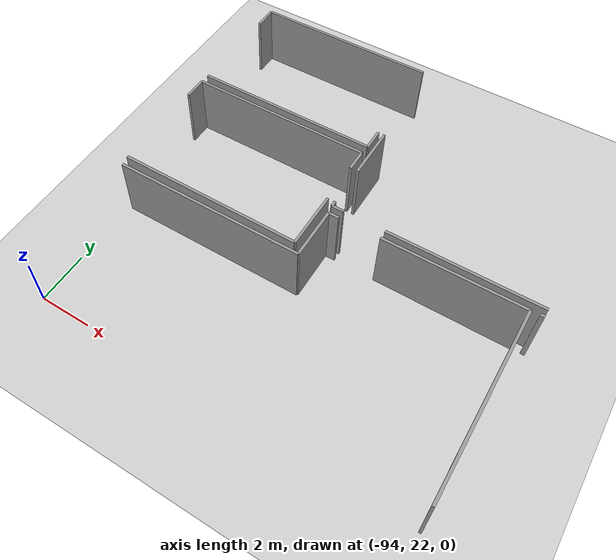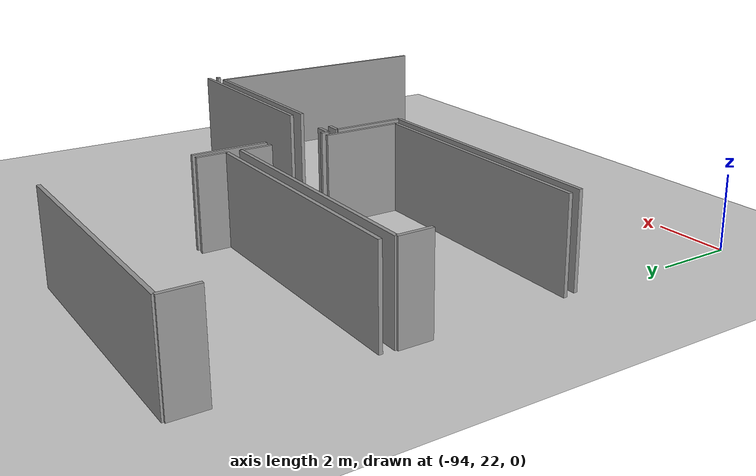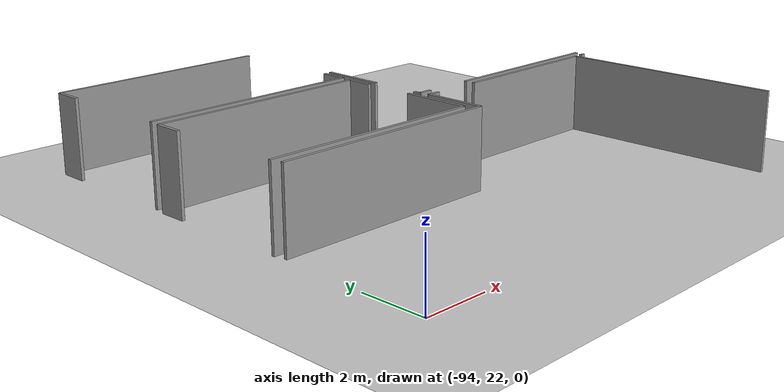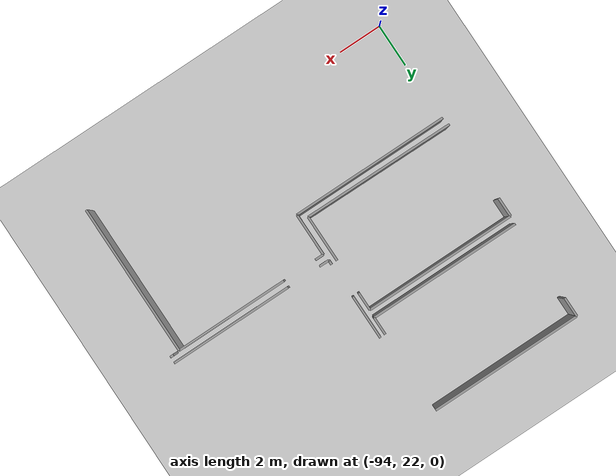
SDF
<sdf version="1.6">
 <world name="default">
  <model name="ground_plane">
   <static>1</static>
   <link name="link">
    <collision name="collision">
     <geometry><plane><normal>0 0 1</normal><size>100 100</size></plane></geometry>
     <surface><friction><ode><mu>100</mu><mu2>50</mu2></ode></friction></surface>
    </collision>
    <visual name="visual">
     <cast_shadows>0</cast_shadows>
     <geometry><plane><normal>0 0 1</normal><size>100 100</size></plane></geometry>
     <material>
      <script><uri>file://media/materials/scripts/gazebo.material</uri><name>Gazebo/Grey</name></script>
     </material>
    </visual>
   </link>
  </model>
  <model name="0510035740_A_40_1_103">
   <static>1</static>
   <link name="Wall_29">
    <collision name="Wall_29_Collision">
     <geometry><box><size>0.901759484274 0.1 2.5</size></box></geometry>
     <pose>0.450879742137 0 1.25 0 0 0</pose>
    </collision>
    <visual name="Wall_29_Visual">
     <pose>0.450879742137 0 1.25 0 0 0</pose>
     <geometry><box><size>0.901759484274 0.1 2.5</size></box></geometry>
     <material>
      <script><uri>file://media/materials/scripts/gazebo.material</uri><name>Gazebo/Grey</name></script>
      <ambient>1 1 1 1</ambient>
     </material>
    </visual>
    <pose>0.0164971478969 -13.840599481 0 0 0 1.57079632679</pose>
   </link>
   <link name="Wall_30">
    <collision name="Wall_30_Collision">
     <geometry><box><size>7.01915572673 0.1 2.5</size></box></geometry>
     <pose>3.50957786337 0 1.25 0 0 0</pose>
    </collision>
    <visual name="Wall_30_Visual">
     <pose>3.50957786337 0 1.25 0 0 0</pose>
     <geometry><box><size>7.01915572673 0.1 2.5</size></box></geometry>
     <material>
      <script><uri>file://media/materials/scripts/gazebo.material</uri><name>Gazebo/Grey</name></script>
      <ambient>1 1 1 1</ambient>
     </material>
    </visual>
    <pose>0.0164971478969 -12.9388399967 0 0 0 0.0</pose>
   </link>
   <link name="Wall_31">
    <collision name="Wall_31_Collision">
     <geometry><box><size>0.823080778919 0.1 2.5</size></box></geometry>
     <pose>0.41154038946 0 1.25 0 0 0</pose>
    </collision>
    <visual name="Wall_31_Visual">
     <pose>0.41154038946 0 1.25 0 0 0</pose>
     <geometry><box><size>0.823080778919 0.1 2.5</size></box></geometry>
     <material>
      <script><uri>file://media/materials/scripts/gazebo.material</uri><name>Gazebo/Grey</name></script>
      <ambient>1 1 1 1</ambient>
     </material>
    </visual>
    <pose>7.03565287463 -16.7047581582 0 0 0 -1.57079632679</pose>
   </link>
   <link name="Wall_32">
    <collision name="Wall_32_Collision">
     <geometry><box><size>7.0191573832 0.1 2.5</size></box></geometry>
     <pose>3.5095786916 0 1.25 0 0 0</pose>
    </collision>
    <visual name="Wall_32_Visual">
     <pose>3.5095786916 0 1.25 0 0 0</pose>
     <geometry><box><size>7.0191573832 0.1 2.5</size></box></geometry>
     <material>
      <script><uri>file://media/materials/scripts/gazebo.material</uri><name>Gazebo/Grey</name></script>
      <ambient>1 1 1 1</ambient>
     </material>
    </visual>
    <pose>7.03565287463 -17.5278389371 0 0 0 3.14090564184</pose>
   </link>
   <link name="Wall_33">
    <collision name="Wall_33_Collision">
     <geometry><box><size>0.887546556855 0.1 2.5</size></box></geometry>
     <pose>0.443773278427 0 1.25 0 0 0</pose>
    </collision>
    <visual name="Wall_33_Visual">
     <pose>0.443773278427 0 1.25 0 0 0</pose>
     <geometry><box><size>0.887546556855 0.1 2.5</size></box></geometry>
     <material>
      <script><uri>file://media/materials/scripts/gazebo.material</uri><name>Gazebo/Grey</name></script>
      <ambient>1 1 1 1</ambient>
     </material>
    </visual>
    <pose>0.0 -18.7839063977 0 0 0 1.57079632679</pose>
   </link>
   <link name="Wall_34">
    <collision name="Wall_34_Collision">
     <geometry><box><size>7.00240477656 0.1 2.5</size></box></geometry>
     <pose>3.50120238828 0 1.25 0 0 0</pose>
    </collision>
    <visual name="Wall_34_Visual">
     <pose>3.50120238828 0 1.25 0 0 0</pose>
     <geometry><box><size>7.00240477656 0.1 2.5</size></box></geometry>
     <material>
      <script><uri>file://media/materials/scripts/gazebo.material</uri><name>Gazebo/Grey</name></script>
      <ambient>1 1 1 1</ambient>
     </material>
    </visual>
    <pose>0.0 -17.8963598409 0 0 0 0.0</pose>
   </link>
   <link name="Wall_35">
    <collision name="Wall_35_Collision">
     <geometry><box><size>0.837801310889 0.1 2.5</size></box></geometry>
     <pose>0.418900655444 0 1.25 0 0 0</pose>
    </collision>
    <visual name="Wall_35_Visual">
     <pose>0.418900655444 0 1.25 0 0 0</pose>
     <geometry><box><size>0.837801310889 0.1 2.5</size></box></geometry>
     <material>
      <script><uri>file://media/materials/scripts/gazebo.material</uri><name>Gazebo/Grey</name></script>
      <ambient>1 1 1 1</ambient>
     </material>
    </visual>
    <pose>7.00240477656 -17.8963598409 0 0 0 -1.57079632679</pose>
   </link>
   <link name="Wall_36">
    <collision name="Wall_36_Collision">
     <geometry><box><size>2.16138017677 0.1 2.5</size></box></geometry>
     <pose>1.08069008839 0 1.25 0 0 0</pose>
    </collision>
    <visual name="Wall_36_Visual">
     <pose>1.08069008839 0 1.25 0 0 0</pose>
     <geometry><box><size>2.16138017677 0.1 2.5</size></box></geometry>
     <material>
      <script><uri>file://media/materials/scripts/gazebo.material</uri><name>Gazebo/Grey</name></script>
      <ambient>1 1 1 1</ambient>
     </material>
    </visual>
    <pose>7.00240477656 -20.3478360183 0 0 0 -1.57079632679</pose>
   </link>
   <link name="Wall_37">
    <collision name="Wall_37_Collision">
     <geometry><box><size>7.00252698051 0.1 2.5</size></box></geometry>
     <pose>3.50126349025 0 1.25 0 0 0</pose>
    </collision>
    <visual name="Wall_37_Visual">
     <pose>3.50126349025 0 1.25 0 0 0</pose>
     <geometry><box><size>7.00252698051 0.1 2.5</size></box></geometry>
     <material>
      <script><uri>file://media/materials/scripts/gazebo.material</uri><name>Gazebo/Grey</name></script>
      <ambient>1 1 1 1</ambient>
     </material>
    </visual>
    <pose>7.00240477656 -22.5092161951 0 0 0 3.13568478467</pose>
   </link>
   <link name="Wall_40">
    <collision name="Wall_40_Collision">
     <geometry><box><size>7.26153689968 0.1 2.5</size></box></geometry>
     <pose>3.63076844984 0 1.25 0 0 0</pose>
    </collision>
    <visual name="Wall_40_Visual">
     <pose>3.63076844984 0 1.25 0 0 0</pose>
     <geometry><box><size>7.26153689968 0.1 2.5</size></box></geometry>
     <material>
      <script><uri>file://media/materials/scripts/gazebo.material</uri><name>Gazebo/Grey</name></script>
      <ambient>1 1 1 1</ambient>
     </material>
    </visual>
    <pose>0.0786787053546 -22.8432199895 0 0 0 0.0</pose>
   </link>
   <link name="Wall_41">
    <collision name="Wall_41_Collision">
     <geometry><box><size>1.97559691123 0.1 2.5</size></box></geometry>
     <pose>0.987798455613 0 1.25 0 0 0</pose>
    </collision>
    <visual name="Wall_41_Visual">
     <pose>0.987798455613 0 1.25 0 0 0</pose>
     <geometry><box><size>1.97559691123 0.1 2.5</size></box></geometry>
     <material>
      <script><uri>file://media/materials/scripts/gazebo.material</uri><name>Gazebo/Grey</name></script>
      <ambient>1 1 1 1</ambient>
     </material>
    </visual>
    <pose>7.34021560503 -22.8432199895 0 0 0 1.57079632679</pose>
   </link>
   <link name="Wall_42">
    <collision name="Wall_42_Collision">
     <geometry><box><size>0.396692956352 0.1 2.5</size></box></geometry>
     <pose>0.198346478176 0 1.25 0 0 0</pose>
    </collision>
    <visual name="Wall_42_Visual">
     <pose>0.198346478176 0 1.25 0 0 0</pose>
     <geometry><box><size>0.396692956352 0.1 2.5</size></box></geometry>
     <material>
      <script><uri>file://media/materials/scripts/gazebo.material</uri><name>Gazebo/Grey</name></script>
      <ambient>1 1 1 1</ambient>
     </material>
    </visual>
    <pose>7.34021560503 -20.8676230782 0 0 0 0.0</pose>
   </link>
   <link name="Wall_43">
    <collision name="Wall_43_Collision">
     <geometry><box><size>5.19863200574 0.1 2.5</size></box></geometry>
     <pose>2.59931600287 0 1.25 0 0 0</pose>
    </collision>
    <visual name="Wall_43_Visual">
     <pose>2.59931600287 0 1.25 0 0 0</pose>
     <geometry><box><size>5.19863200574 0.1 2.5</size></box></geometry>
     <material>
      <script><uri>file://media/materials/scripts/gazebo.material</uri><name>Gazebo/Grey</name></script>
      <ambient>1 1 1 1</ambient>
     </material>
    </visual>
    <pose>9.30007677519 -20.8676230782 0 0 0 0.0</pose>
   </link>
   <link name="Wall_44">
    <collision name="Wall_44_Collision">
     <geometry><box><size>6.974232724 0.1 2.5</size></box></geometry>
     <pose>3.487116362 0 1.25 0 0 0</pose>
    </collision>
    <visual name="Wall_44_Visual">
     <pose>3.487116362 0 1.25 0 0 0</pose>
     <geometry><box><size>6.974232724 0.1 2.5</size></box></geometry>
     <material>
      <script><uri>file://media/materials/scripts/gazebo.material</uri><name>Gazebo/Grey</name></script>
      <ambient>1 1 1 1</ambient>
     </material>
    </visual>
    <pose>14.4987087809 -20.8676230782 0 0 0 -1.57079632679</pose>
   </link>
   <link name="Wall_48">
    <collision name="Wall_48_Collision">
     <geometry><box><size>0.160403038013 0.1 2.5</size></box></geometry>
     <pose>0.0802015190066 0 1.25 0 0 0</pose>
    </collision>
    <visual name="Wall_48_Visual">
     <pose>0.0802015190066 0 1.25 0 0 0</pose>
     <geometry><box><size>0.160403038013 0.1 2.5</size></box></geometry>
     <material>
      <script><uri>file://media/materials/scripts/gazebo.material</uri><name>Gazebo/Grey</name></script>
      <ambient>1 1 1 1</ambient>
     </material>
    </visual>
    <pose>14.7987030704 -20.8417352462 0 0 0 0.0</pose>
   </link>
   <link name="Wall_66">
    <collision name="Wall_66_Collision">
     <geometry><box><size>0.209894481704 0.1 2.5</size></box></geometry>
     <pose>0.104947240852 0 1.25 0 0 0</pose>
    </collision>
    <visual name="Wall_66_Visual">
     <pose>0.104947240852 0 1.25 0 0 0</pose>
     <geometry><box><size>0.209894481704 0.1 2.5</size></box></geometry>
     <material>
      <script><uri>file://media/materials/scripts/gazebo.material</uri><name>Gazebo/Grey</name></script>
      <ambient>1 1 1 1</ambient>
     </material>
    </visual>
    <pose>7.28260248853 -20.5437713749 0 0 0 1.57079632679</pose>
   </link>
   <link name="Wall_67">
    <collision name="Wall_67_Collision">
     <geometry><box><size>2.04082409599 0.1 2.5</size></box></geometry>
     <pose>1.02041204799 0 1.25 0 0 0</pose>
    </collision>
    <visual name="Wall_67_Visual">
     <pose>1.02041204799 0 1.25 0 0 0</pose>
     <geometry><box><size>2.04082409599 0.1 2.5</size></box></geometry>
     <material>
      <script><uri>file://media/materials/scripts/gazebo.material</uri><name>Gazebo/Grey</name></script>
      <ambient>1 1 1 1</ambient>
     </material>
    </visual>
    <pose>7.28260248853 -18.7346687563 0 0 0 1.57079632679</pose>
   </link>
   <link name="Wall_86">
    <collision name="Wall_86_Collision">
     <geometry><box><size>5.65090766039 0.1 2.5</size></box></geometry>
     <pose>2.82545383019 0 1.25 0 0 0</pose>
    </collision>
    <visual name="Wall_86_Visual">
     <pose>2.82545383019 0 1.25 0 0 0</pose>
     <geometry><box><size>5.65090766039 0.1 2.5</size></box></geometry>
     <material>
      <script><uri>file://media/materials/scripts/gazebo.material</uri><name>Gazebo/Grey</name></script>
      <ambient>1 1 1 1</ambient>
     </material>
    </visual>
    <pose>14.9585985038 -20.5468170022 0 0 0 3.14159265359</pose>
   </link>
   <link name="Wall_87">
    <collision name="Wall_87_Collision">
     <geometry><box><size>0.458377027511 0.1 2.5</size></box></geometry>
     <pose>0.229188513755 0 1.25 0 0 0</pose>
    </collision>
    <visual name="Wall_87_Visual">
     <pose>0.229188513755 0 1.25 0 0 0</pose>
     <geometry><box><size>0.458377027511 0.1 2.5</size></box></geometry>
     <material>
      <script><uri>file://media/materials/scripts/gazebo.material</uri><name>Gazebo/Grey</name></script>
      <ambient>1 1 1 1</ambient>
     </material>
    </visual>
    <pose>7.74096939779 -20.5468170022 0 0 0 3.1349482331</pose>
   </link>
   <pose>-93.95 49.6557238758 0 0 0 0</pose>
  </model>
 </world>
</sdf>
